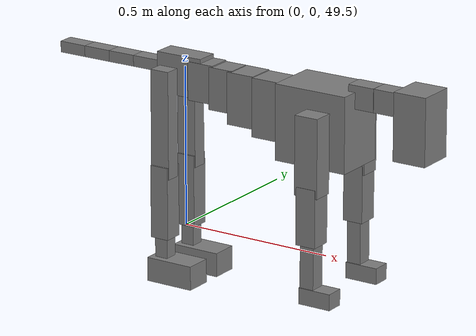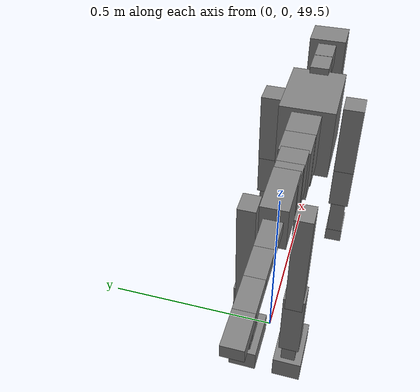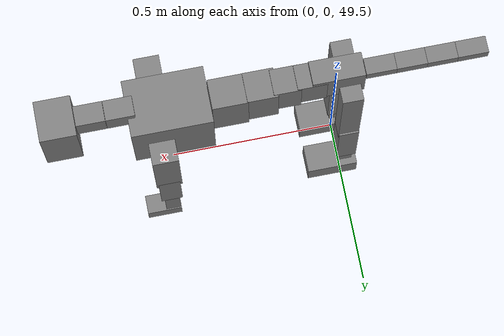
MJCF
<mujoco model="dog">

    <default>
        <joint armature="0.02" stiffness="1" damping="0.2" limited="true"/>
        <geom condim="3" friction="1 0.05 0.05" margin="0.01"/>
        <motor ctrllimited="true" ctrlrange="-1.0 1.0" forcelimited="true" gear="50"/>
    </default>

    <compiler inertiafromgeom="true" angle="radian"/>

    <option timestep="0.016" iterations="50" tolerance="1e-10" solver="Newton" jacobian="dense" cone="pyramidal"/>

    <size nconmax="20000" njmax="60000" nstack="5000000"/>
    <visual>
        <map force="0.1" zfar="30"/>
        <rgba haze="0.15 0.25 0.35 1"/>
        <quality shadowsize="2048"/>
        <global offwidth="800" offheight="800"/>
    </visual>

    <asset>
        <texture type="skybox" builtin="gradient" rgb1="0.3 0.5 0.7" rgb2="0 0 0" width="512" height="512"/>
        <texture name="texplane" type="2d" builtin="checker" rgb1=".2 .3 .4" rgb2=".1 0.15 0.2" width="512" height="512"
                 mark="cross" markrgb=".8 .8 .8"/>
        <texture name="texgeom" type="cube" builtin="flat" mark="cross" width="127" height="1278" rgb1="0.8 0.6 0.4"
                 rgb2="0.8 0.6 0.4" markrgb="1 1 1" random="0.01"/>

        <material name="matplane" reflectance="0.3" texture="texplane" texrepeat="1 1" texuniform="true"/>
        <material name="matgeom" texture="texgeom" texuniform="true" rgba="0.8 0.6 .4 1"/>
    </asset>

    <worldbody>
        <geom name="floor" pos="0 0 0" size="0 0 .25" type="plane" material="matplane" condim="3"/>

        <light directional="false" diffuse=".2 .2 .2" specular="0 0 0" pos="0 0 5" dir="0 0 -1" castshadow="false"/>
        <light mode="targetbodycom" target="torso" directional="false" diffuse=".8 .8 .8" specular="0.3 0.3 0.3"
               pos="0 0 4.0" dir="0 0 -1"/>

        <body name="root" pos="0 0 50">
            <freejoint name="root_1"/>
            <geom type="box" pos="0 0 -0.02" size="0.0774  0.0358  0.063" density="2030"/>

            <body name="spine1" pos="0.054 0 0">
                <joint name="spine1_y" axis="0 1 0" range="0 0.7" limited="true"/>
                <geom type="box" pos="0.02375 0 -0.03" size="0.04375  0.0375  0.05985" density="2030"/>

                <body name="spine2" pos="0.0612 0 0">
                    <joint name="spine2_y" axis="0 1 0" range="-0.15 0.15" limited="true"/>
                    <geom type="box" pos="0.03555  0  -0.04" size="0.04055  0.039  0.06615" density="2030"/>

                    <body name="spine3" pos="0.0730 0 0">
                        <joint name="spine3_y" axis="0 1 0" range="-0.15 0.15" limited="true"/>
                        <geom type="box" pos="0.03555  0  -0.057" size="0.04555  0.0445  0.081" density="2030"/>

                        <body name="spine4" pos="0.0780 0 0">
                            <joint name="spine4_y" axis="0 1 0" range="-0.15 0.15" limited="true"/>
                            <geom type="box" pos="0.05265  0  -0.07" size="0.05265  0.045  0.09135" density="2030"/>

                            <body name="torso" pos="0.1082 0 0">
                                <joint name="torso_y" axis="0 1 0" range="-0.15 0.15" limited="true"/>
                                <geom type="box" pos="0.11925  0  -0.085" size="0.11925  0.085  0.11745"
                                      density="2030"/>

                                <body name="neck1" pos="0.2160  0   0.0180">
                                    <joint name="neck1_y" axis="0 1 0" range="-1.2  -1" limited="true"/>
                                    <geom type="box" pos="0.0423  0  0" size="0.0423  0.03  0.036" density="2325"/>

                                    <body name="neck2" pos="0.0853  0  0">
                                        <joint name="neck2_y" axis="0 1 0" range="0.1  0" limited="true"/>
                                        <geom type="box" pos="0.0423  0  0" size="0.0423  0.03  0.036" density="2325"/>

                                        <body name="head" pos="0.0853  0  0">
                                            <joint name="head_y" axis="0 1 0" range="-0.3  -0.2" limited="true"/>
                                            <geom type="box" pos="0.0531  0  -0.055" size="0.0531  0.06  0.1044"
                                                  density="4030"/>

                                        </body>
                                    </body>
                                </body>

                                <body name="front_shoulder" pos="0.156  0   -0.0480">
                                    <joint name="front_shoulder_y" axis="0 1 0" range="-1 1.5" limited="true"/>
                                    <geom type="box" pos="0 0.13 -0.0953" size="0.0384  0.0328  0.1219" density="1158"/>
                                    <geom type="box" pos="0 -0.13 -0.0953" size="0.0384  0.0328  0.1219"
                                          density="1158"/>

                                    <body name="front_elbow" pos="0  0  -0.1906">
                                        <joint name="front_elbow_y" axis="0 1 0" range="-2 0" limited="true"/>
                                        <geom type="box" pos="0 0.13 -0.0892" size="0.0325  0.0333  0.0892"
                                              density="1081"/>
                                        <geom type="box" pos="0 -0.13 -0.0892" size="0.0325  0.0333  0.0892"
                                              density="1081"/>

                                        <body name="front_wrist" pos="0  0  -0.1784">
                                            <joint name="front_wrist_y" axis="0 1 0" range="-0.2 0" limited="true"/>
                                            <geom type="box" pos="0 0.13 -0.0738" size="0.0227  0.0252  0.0870"
                                                  density="1664"/>
                                            <geom type="box" pos="0 -0.13 -0.0738" size="0.0227  0.0252  0.0870"
                                                  density="1664"/>

                                            <body name="front_finger_end" pos="0  0  -0.1477">
                                                <joint name="front_finger_y" axis="0 1 0" range="-0.4 1"
                                                       limited="true"/>
                                                <geom type="box" pos="0.0289  0.13  -0.0102"
                                                      size="0.0531  0.0289  0.0252" density="1515"/>
                                                <geom type="box" pos="0.0289  -0.13  -0.0102"
                                                      size="0.0531  0.0289  0.0252" density="1515"/>

                                            </body>

                                        </body>
                                    </body>
                                </body>

                            </body>
                        </body>
                    </body>
                </body>
            </body>

            <body name="back_hip" pos="-0.03 0 -0.018">
                <joint name="back_hip_y" axis="0 1 0" range="-1.5 0.3" limited="true"/>
                <geom type="box" pos="0 0.07 -0.1460" size="0.0311  0.0244  0.1688" density="1154"/>
                <geom type="box" pos="0 -0.07 -0.1460" size="0.0311  0.0244  0.1688" density="1154"/>

                <body name="back_knee" pos="0  0  -0.2921">
                    <joint name="back_knee_y" axis="0 1 0" range="0 2.8" limited="true"/>
                    <geom type="box" pos="0 0.07 -0.0984" size="0.0304  0.0300  0.1139" density="1227"/>
                    <geom type="box" pos="0 -0.07 -0.0984" size="0.0304  0.0300  0.1139" density="1227"/>

                    <body name="back_ankle" pos="0  0  -0.1968">
                        <joint name="back_ankle_y" axis="0 1 0" range="-2.2 0" limited="true"/>
                        <geom type="box" pos="0 0.07 -0.0466" size="0.0213  0.0213  0.0578" density="1284"/>
                        <geom type="box" pos="0 -0.07 -0.0466" size="0.0213  0.0213  0.0578" density="1284"/>

                        <body name="back_toe_end" pos="0  0  -0.0932">
                            <joint name="back_toe_y" axis="0 1 0" range="-0.4 1" limited="true"/>
                            <geom type="box" pos="0.0427  0.07  -0.0225" size="0.0782  0.0427  0.0375" density="1515"/>
                            <geom type="box" pos="0.0427  -0.07  -0.0225" size="0.0782  0.0427  0.0375" density="1515"/>

                        </body>
                    </body>
                </body>
            </body>

            <body name="tail1" pos="-0.074 0 -0.006">
                <joint name="tail1_y" axis="0 1 0" range="-0.2 0.2" limited="true"/>
                <geom type="box" pos="-0.0536  0  0" size="0.045  0.025  0.0175" density="1587"/>

                <body name="tail2" pos="-0.09 0 0">
                    <joint name="tail2_y" axis="0 1 0" range="-0.2 0.2" limited="true"/>
                    <geom type="box" pos="-0.0536  0  0" size="0.045  0.025  0.0175" density="1587"/>

                    <body name="tail3" pos="-0.09 0 0">
                        <joint name="tail3_y" axis="0 1 0" range="-0.2 0.2" limited="true"/>
                        <geom type="box" pos="-0.0536  0  0" size="0.045  0.025  0.0175" density="1587"/>

                        <body name="tail4" pos="-0.09 0 0">
                            <joint name="tail4_y" axis="0 1 0" range="-0.2 0.2" limited="true"/>
                            <geom type="box" pos="-0.0536  0  0" size="0.045  0.025  0.0175" density="1587"/>

                        </body>
                    </body>
                </body>
            </body>
        </body>
    </worldbody>

    <actuator>
        <motor joint="spine1_y" forcerange="-150 150     "/>
        <motor joint="spine2_y" forcerange="-150 150     "/>
        <motor joint="spine3_y" forcerange="-150 150     "/>
        <motor joint="spine4_y" forcerange="-150 150     "/>
        <motor joint="torso_y" forcerange="-150 150     "/>
        <motor joint="neck1_y" forcerange="-100 100       "/>
        <motor joint="neck2_y" forcerange="-100 100       "/>
        <motor joint="head_y" forcerange="-150 150       "/>
        <motor joint="front_shoulder_y" forcerange="-159.29 159.57"/>
        <motor joint="front_elbow_y" forcerange="-171.18 170.78"/>
        <motor joint="front_wrist_y" forcerange="-145.76 55.66"/>
        <motor joint="front_finger_y" forcerange="-77.27 37.06"/>
        <motor joint="back_hip_y" forcerange="-273.60 251.41"/>
        <motor joint="back_knee_y" forcerange="-360.28 275.45"/>
        <motor joint="back_angle_y" forcerange="-68.40 172.36"/>
        <motor joint="back_toe_y" forcerange="-131.61 129.77"/>
        <motor joint="tail1_y" forcerange="-50 50     "/>
        <motor joint="tail2_y" forcerange="-50 50     "/>
        <motor joint="tail3_y" forcerange="-50 50     "/>
        <motor joint="tail4_y" forcerange="-50 50     "/>
    </actuator>
</mujoco>
